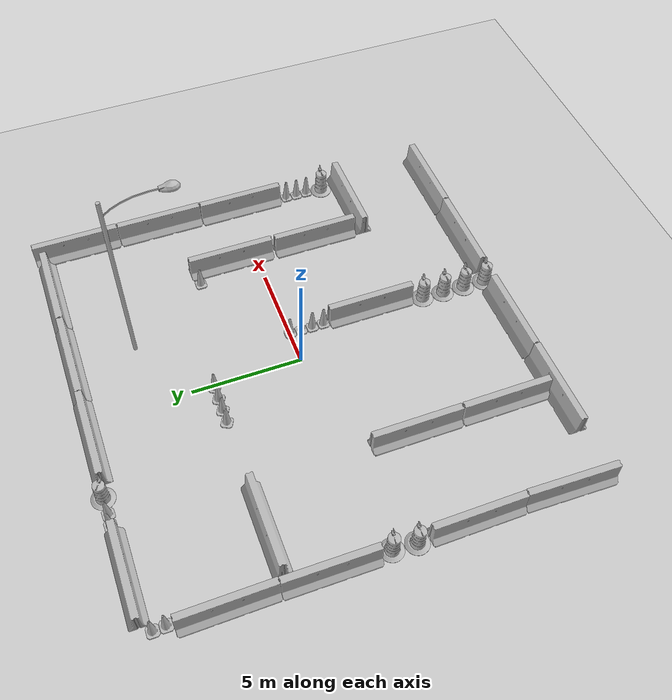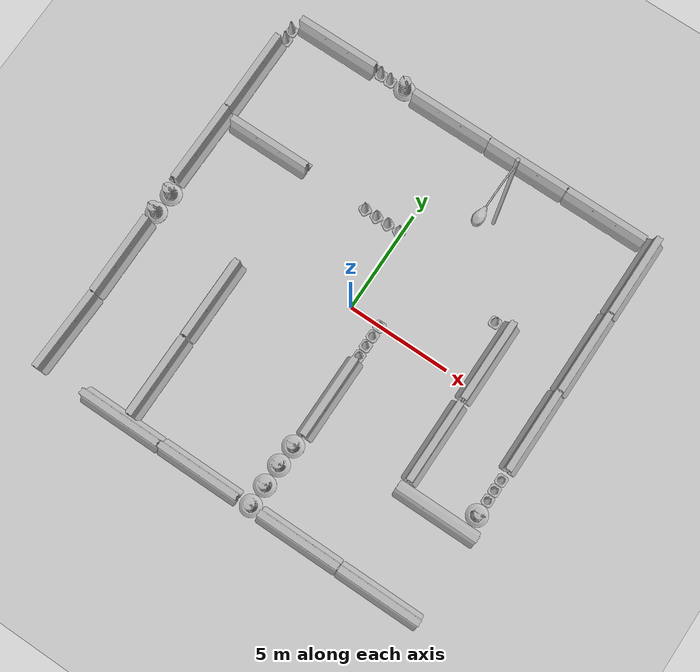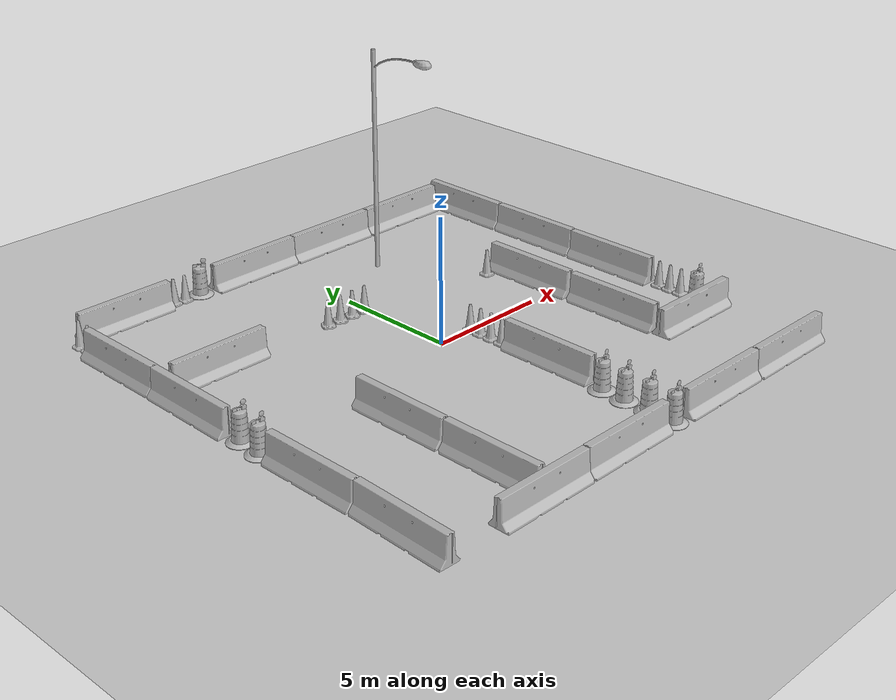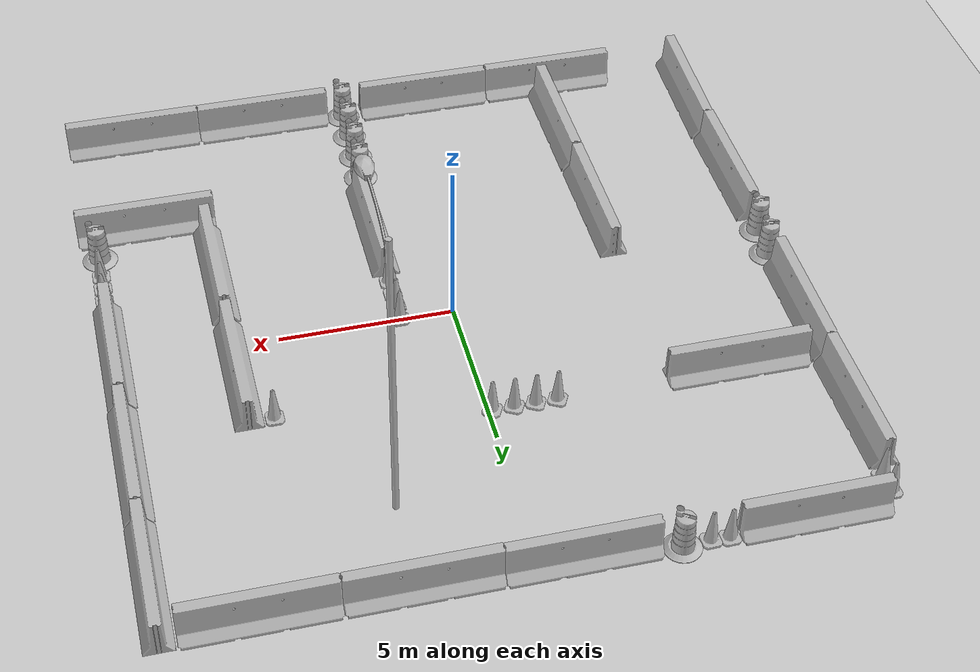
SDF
<sdf version="1.6">
 <world name="default">
  <light name="sun" type="directional">
   <pose>0 0 10 0 -0 0</pose>
   <diffuse>0.8 0.8 0.8 1</diffuse>
   <specular>0.2 0.2 0.2 1</specular>
   <attenuation>
    <range>1000</range>
    <constant>0.9</constant>
    <linear>0.01</linear>
    <quadratic>0.001</quadratic>
   </attenuation>
   <direction>-0.5 0.1 -0.9</direction>
  </light>
  <model name="ground_plane">
   <static>1</static>
   <link name="link">
    <collision name="collision">
     <geometry><plane><normal>0 0 1</normal><size>100 100</size></plane></geometry>
     <surface>
      <contact><collide_bitmask>65535</collide_bitmask></contact>
      <friction><ode><mu>100</mu><mu2>50</mu2></ode></friction>
     </surface>
    </collision>
    <visual name="visual">
     <cast_shadows>0</cast_shadows>
     <geometry><plane><normal>0 0 1</normal><size>100 100</size></plane></geometry>
     <material>
      <script><uri>file://media/materials/scripts/gazebo.material</uri><name>Gazebo/Grey</name></script>
     </material>
    </visual>
   </link>
  </model>
  <gravity>0 0 -9.8</gravity>
  <magnetic_field>6e-06 2.3e-05 -4.2e-05</magnetic_field>
  <atmosphere type="adiabatic"/>
  <physics name="default_physics" default="0" type="ode">
   <max_step_size>0.001</max_step_size>
   <real_time_factor>1</real_time_factor>
   <real_time_update_rate>1000</real_time_update_rate>
  </physics>
  <scene><ambient>0.4 0.4 0.4 1</ambient><background>0.7 0.7 0.7 1</background><shadows>1</shadows></scene>
  <spherical_coordinates>
   <surface_model>EARTH_WGS84</surface_model>
   <latitude_deg>0</latitude_deg>
   <longitude_deg>0</longitude_deg>
   <elevation>0</elevation>
   <heading_deg>0</heading_deg>
  </spherical_coordinates>
  <model name="jersey_barrier">
   <static>1</static>
   <link name="link">
    <visual name="visual">
     <geometry><mesh><uri>model://jersey_barrier/meshes/jersey_barrier.dae</uri></mesh></geometry>
    </visual>
    <collision name="upright">
     <pose>0 0 0.5715 0 -0 0</pose>
     <geometry><box><size>4.06542 0.3063 1.143</size></box></geometry>
    </collision>
    <collision name="base">
     <pose>0 0 0.032258 0 -0 0</pose>
     <geometry><box><size>4.06542 0.8107 0.064516</size></box></geometry>
    </collision>
    <collision name="base2">
     <pose>0 0 0.1 0 -0 0</pose>
     <geometry><box><size>4.06542 0.65 0.1</size></box></geometry>
    </collision>
    <collision name="base3">
     <pose>0 0 0.2 0 -0 0</pose>
     <geometry><box><size>4.06542 0.5 0.1</size></box></geometry>
    </collision>
    <collision name="left-angle">
     <pose>0 -0.224 0.2401 0.9 -0 0</pose>
     <geometry><box><size>4.06542 0.5 0.064516</size></box></geometry>
    </collision>
    <collision name="right-angle">
     <pose>0 0.224 0.2401 -0.9 0 0</pose>
     <geometry><box><size>4.06542 0.5 0.064516</size></box></geometry>
    </collision>
   </link>
   <pose>7.91587 -9.63648 0 0 -0 0</pose>
  </model>
  <model name="jersey_barrier_0">
   <static>1</static>
   <link name="link">
    <visual name="visual">
     <geometry><mesh><uri>model://jersey_barrier/meshes/jersey_barrier.dae</uri></mesh></geometry>
    </visual>
    <collision name="upright">
     <pose>0 0 0.5715 0 -0 0</pose>
     <geometry><box><size>4.06542 0.3063 1.143</size></box></geometry>
    </collision>
    <collision name="base">
     <pose>0 0 0.032258 0 -0 0</pose>
     <geometry><box><size>4.06542 0.8107 0.064516</size></box></geometry>
    </collision>
    <collision name="base2">
     <pose>0 0 0.1 0 -0 0</pose>
     <geometry><box><size>4.06542 0.65 0.1</size></box></geometry>
    </collision>
    <collision name="base3">
     <pose>0 0 0.2 0 -0 0</pose>
     <geometry><box><size>4.06542 0.5 0.1</size></box></geometry>
    </collision>
    <collision name="left-angle">
     <pose>0 -0.224 0.2401 0.9 -0 0</pose>
     <geometry><box><size>4.06542 0.5 0.064516</size></box></geometry>
    </collision>
    <collision name="right-angle">
     <pose>0 0.224 0.2401 -0.9 0 0</pose>
     <geometry><box><size>4.06542 0.5 0.064516</size></box></geometry>
    </collision>
   </link>
   <pose>3.84154 -9.62151 0 0 -0 0</pose>
  </model>
  <model name="Construction Barrel">
   <link name="link">
    <inertial>
     <pose>0 0 0.4 0 -0 0</pose>
     <mass>500</mass>
     <inertia><ixx>51.2096</ixx><iyy>51.2096</iyy><izz>25</izz><ixy>0</ixy><ixz>0</ixz><iyz>0</iyz></inertia>
    </inertial>
    <collision name="collision">
     <geometry><mesh><uri>model://construction_barrel/meshes/construction_barrel.dae</uri></mesh></geometry>
    </collision>
    <visual name="visual">
     <geometry><mesh><uri>model://construction_barrel/meshes/construction_barrel.dae</uri></mesh></geometry>
    </visual>
   </link>
   <pose>1.29848 -9.56165 -1e-06 3e-06 -2e-06 -0.00014</pose>
  </model>
  <model name="Construction Barrel_0">
   <link name="link">
    <inertial>
     <pose>0 0 0.4 0 -0 0</pose>
     <mass>500</mass>
     <inertia><ixx>51.2096</ixx><iyy>51.2096</iyy><izz>25</izz><ixy>0</ixy><ixz>0</ixz><iyz>0</iyz></inertia>
    </inertial>
    <collision name="collision">
     <geometry><mesh><uri>model://construction_barrel/meshes/construction_barrel.dae</uri></mesh></geometry>
    </collision>
    <visual name="visual">
     <geometry><mesh><uri>model://construction_barrel/meshes/construction_barrel.dae</uri></mesh></geometry>
    </visual>
   </link>
   <pose>1.30655 -8.51712 -1e-06 3e-06 -2e-06 -0.000161</pose>
  </model>
  <model name="Construction Barrel_1">
   <link name="link">
    <inertial>
     <pose>0 0 0.4 0 -0 0</pose>
     <mass>500</mass>
     <inertia><ixx>51.2096</ixx><iyy>51.2096</iyy><izz>25</izz><ixy>0</ixy><ixz>0</ixz><iyz>0</iyz></inertia>
    </inertial>
    <collision name="collision">
     <geometry><mesh><uri>model://construction_barrel/meshes/construction_barrel.dae</uri></mesh></geometry>
    </collision>
    <visual name="visual">
     <geometry><mesh><uri>model://construction_barrel/meshes/construction_barrel.dae</uri></mesh></geometry>
    </visual>
   </link>
   <pose>1.31397 -7.47198 -1e-06 3e-06 -2e-06 -0.00016</pose>
  </model>
  <model name="Construction Barrel_2">
   <link name="link">
    <inertial>
     <pose>0 0 0.4 0 -0 0</pose>
     <mass>500</mass>
     <inertia><ixx>51.2096</ixx><iyy>51.2096</iyy><izz>25</izz><ixy>0</ixy><ixz>0</ixz><iyz>0</iyz></inertia>
    </inertial>
    <collision name="collision">
     <geometry><mesh><uri>model://construction_barrel/meshes/construction_barrel.dae</uri></mesh></geometry>
    </collision>
    <visual name="visual">
     <geometry><mesh><uri>model://construction_barrel/meshes/construction_barrel.dae</uri></mesh></geometry>
    </visual>
   </link>
   <pose>1.35829 -6.45747 -1e-06 3e-06 -2e-06 -0.000159</pose>
  </model>
  <model name="jersey_barrier_1">
   <static>1</static>
   <link name="link">
    <visual name="visual">
     <geometry><mesh><uri>model://jersey_barrier/meshes/jersey_barrier.dae</uri></mesh></geometry>
    </visual>
    <collision name="upright">
     <pose>0 0 0.5715 0 -0 0</pose>
     <geometry><box><size>4.06542 0.3063 1.143</size></box></geometry>
    </collision>
    <collision name="base">
     <pose>0 0 0.032258 0 -0 0</pose>
     <geometry><box><size>4.06542 0.8107 0.064516</size></box></geometry>
    </collision>
    <collision name="base2">
     <pose>0 0 0.1 0 -0 0</pose>
     <geometry><box><size>4.06542 0.65 0.1</size></box></geometry>
    </collision>
    <collision name="base3">
     <pose>0 0 0.2 0 -0 0</pose>
     <geometry><box><size>4.06542 0.5 0.1</size></box></geometry>
    </collision>
    <collision name="left-angle">
     <pose>0 -0.224 0.2401 0.9 -0 0</pose>
     <geometry><box><size>4.06542 0.5 0.064516</size></box></geometry>
    </collision>
    <collision name="right-angle">
     <pose>0 0.224 0.2401 -0.9 0 0</pose>
     <geometry><box><size>4.06542 0.5 0.064516</size></box></geometry>
    </collision>
   </link>
   <pose>8.0434 -5.4376 0 0 -0 0</pose>
  </model>
  <model name="jersey_barrier_2">
   <static>1</static>
   <link name="link">
    <visual name="visual">
     <geometry><mesh><uri>model://jersey_barrier/meshes/jersey_barrier.dae</uri></mesh></geometry>
    </visual>
    <collision name="upright">
     <pose>0 0 0.5715 0 -0 0</pose>
     <geometry><box><size>4.06542 0.3063 1.143</size></box></geometry>
    </collision>
    <collision name="base">
     <pose>0 0 0.032258 0 -0 0</pose>
     <geometry><box><size>4.06542 0.8107 0.064516</size></box></geometry>
    </collision>
    <collision name="base2">
     <pose>0 0 0.1 0 -0 0</pose>
     <geometry><box><size>4.06542 0.65 0.1</size></box></geometry>
    </collision>
    <collision name="base3">
     <pose>0 0 0.2 0 -0 0</pose>
     <geometry><box><size>4.06542 0.5 0.1</size></box></geometry>
    </collision>
    <collision name="left-angle">
     <pose>0 -0.224 0.2401 0.9 -0 0</pose>
     <geometry><box><size>4.06542 0.5 0.064516</size></box></geometry>
    </collision>
    <collision name="right-angle">
     <pose>0 0.224 0.2401 -0.9 0 0</pose>
     <geometry><box><size>4.06542 0.5 0.064516</size></box></geometry>
    </collision>
   </link>
   <pose>-1.30441 -9.61113 0 0 -0 0</pose>
  </model>
  <model name="jersey_barrier_3">
   <static>1</static>
   <link name="link">
    <visual name="visual">
     <geometry><mesh><uri>model://jersey_barrier/meshes/jersey_barrier.dae</uri></mesh></geometry>
    </visual>
    <collision name="upright">
     <pose>0 0 0.5715 0 -0 0</pose>
     <geometry><box><size>4.06542 0.3063 1.143</size></box></geometry>
    </collision>
    <collision name="base">
     <pose>0 0 0.032258 0 -0 0</pose>
     <geometry><box><size>4.06542 0.8107 0.064516</size></box></geometry>
    </collision>
    <collision name="base2">
     <pose>0 0 0.1 0 -0 0</pose>
     <geometry><box><size>4.06542 0.65 0.1</size></box></geometry>
    </collision>
    <collision name="base3">
     <pose>0 0 0.2 0 -0 0</pose>
     <geometry><box><size>4.06542 0.5 0.1</size></box></geometry>
    </collision>
    <collision name="left-angle">
     <pose>0 -0.224 0.2401 0.9 -0 0</pose>
     <geometry><box><size>4.06542 0.5 0.064516</size></box></geometry>
    </collision>
    <collision name="right-angle">
     <pose>0 0.224 0.2401 -0.9 0 0</pose>
     <geometry><box><size>4.06542 0.5 0.064516</size></box></geometry>
    </collision>
   </link>
   <pose>-5.38329 -9.62572 0 0 -0 0</pose>
  </model>
  <model name="jersey_barrier_4">
   <static>1</static>
   <link name="link">
    <visual name="visual">
     <geometry><mesh><uri>model://jersey_barrier/meshes/jersey_barrier.dae</uri></mesh></geometry>
    </visual>
    <collision name="upright">
     <pose>0 0 0.5715 0 -0 0</pose>
     <geometry><box><size>4.06542 0.3063 1.143</size></box></geometry>
    </collision>
    <collision name="base">
     <pose>0 0 0.032258 0 -0 0</pose>
     <geometry><box><size>4.06542 0.8107 0.064516</size></box></geometry>
    </collision>
    <collision name="base2">
     <pose>0 0 0.1 0 -0 0</pose>
     <geometry><box><size>4.06542 0.65 0.1</size></box></geometry>
    </collision>
    <collision name="base3">
     <pose>0 0 0.2 0 -0 0</pose>
     <geometry><box><size>4.06542 0.5 0.1</size></box></geometry>
    </collision>
    <collision name="left-angle">
     <pose>0 -0.224 0.2401 0.9 -0 0</pose>
     <geometry><box><size>4.06542 0.5 0.064516</size></box></geometry>
    </collision>
    <collision name="right-angle">
     <pose>0 0.224 0.2401 -0.9 0 0</pose>
     <geometry><box><size>4.06542 0.5 0.064516</size></box></geometry>
    </collision>
   </link>
   <pose>-9.61513 2.30223 0 0 -0 1.56363</pose>
  </model>
  <model name="jersey_barrier_5">
   <static>1</static>
   <link name="link">
    <visual name="visual">
     <geometry><mesh><uri>model://jersey_barrier/meshes/jersey_barrier.dae</uri></mesh></geometry>
    </visual>
    <collision name="upright">
     <pose>0 0 0.5715 0 -0 0</pose>
     <geometry><box><size>4.06542 0.3063 1.143</size></box></geometry>
    </collision>
    <collision name="base">
     <pose>0 0 0.032258 0 -0 0</pose>
     <geometry><box><size>4.06542 0.8107 0.064516</size></box></geometry>
    </collision>
    <collision name="base2">
     <pose>0 0 0.1 0 -0 0</pose>
     <geometry><box><size>4.06542 0.65 0.1</size></box></geometry>
    </collision>
    <collision name="base3">
     <pose>0 0 0.2 0 -0 0</pose>
     <geometry><box><size>4.06542 0.5 0.1</size></box></geometry>
    </collision>
    <collision name="left-angle">
     <pose>0 -0.224 0.2401 0.9 -0 0</pose>
     <geometry><box><size>4.06542 0.5 0.064516</size></box></geometry>
    </collision>
    <collision name="right-angle">
     <pose>0 0.224 0.2401 -0.9 0 0</pose>
     <geometry><box><size>4.06542 0.5 0.064516</size></box></geometry>
    </collision>
   </link>
   <pose>-9.59172 6.3674 0 0 0 -1.56631</pose>
  </model>
  <model name="jersey_barrier_6">
   <static>1</static>
   <link name="link">
    <visual name="visual">
     <geometry><mesh><uri>model://jersey_barrier/meshes/jersey_barrier.dae</uri></mesh></geometry>
    </visual>
    <collision name="upright">
     <pose>0 0 0.5715 0 -0 0</pose>
     <geometry><box><size>4.06542 0.3063 1.143</size></box></geometry>
    </collision>
    <collision name="base">
     <pose>0 0 0.032258 0 -0 0</pose>
     <geometry><box><size>4.06542 0.8107 0.064516</size></box></geometry>
    </collision>
    <collision name="base2">
     <pose>0 0 0.1 0 -0 0</pose>
     <geometry><box><size>4.06542 0.65 0.1</size></box></geometry>
    </collision>
    <collision name="base3">
     <pose>0 0 0.2 0 -0 0</pose>
     <geometry><box><size>4.06542 0.5 0.1</size></box></geometry>
    </collision>
    <collision name="left-angle">
     <pose>0 -0.224 0.2401 0.9 -0 0</pose>
     <geometry><box><size>4.06542 0.5 0.064516</size></box></geometry>
    </collision>
    <collision name="right-angle">
     <pose>0 0.224 0.2401 -0.9 0 0</pose>
     <geometry><box><size>4.06542 0.5 0.064516</size></box></geometry>
    </collision>
   </link>
   <pose>1.52517 -3.89392 0 0 -0 1.57262</pose>
  </model>
  <model name="jersey_barrier_7">
   <static>1</static>
   <link name="link">
    <visual name="visual">
     <geometry><mesh><uri>model://jersey_barrier/meshes/jersey_barrier.dae</uri></mesh></geometry>
    </visual>
    <collision name="upright">
     <pose>0 0 0.5715 0 -0 0</pose>
     <geometry><box><size>4.06542 0.3063 1.143</size></box></geometry>
    </collision>
    <collision name="base">
     <pose>0 0 0.032258 0 -0 0</pose>
     <geometry><box><size>4.06542 0.8107 0.064516</size></box></geometry>
    </collision>
    <collision name="base2">
     <pose>0 0 0.1 0 -0 0</pose>
     <geometry><box><size>4.06542 0.65 0.1</size></box></geometry>
    </collision>
    <collision name="base3">
     <pose>0 0 0.2 0 -0 0</pose>
     <geometry><box><size>4.06542 0.5 0.1</size></box></geometry>
    </collision>
    <collision name="left-angle">
     <pose>0 -0.224 0.2401 0.9 -0 0</pose>
     <geometry><box><size>4.06542 0.5 0.064516</size></box></geometry>
    </collision>
    <collision name="right-angle">
     <pose>0 0.224 0.2401 -0.9 0 0</pose>
     <geometry><box><size>4.06542 0.5 0.064516</size></box></geometry>
    </collision>
   </link>
   <pose>-9.60679 -7.89454 0 0 0 -1.59777</pose>
  </model>
  <model name="jersey_barrier_5_clone">
   <static>1</static>
   <link name="link">
    <visual name="visual">
     <geometry><mesh><uri>model://jersey_barrier/meshes/jersey_barrier.dae</uri></mesh></geometry>
    </visual>
    <collision name="upright">
     <pose>0 0 0.5715 0 -0 0</pose>
     <geometry><box><size>4.06542 0.3063 1.143</size></box></geometry>
    </collision>
    <collision name="base">
     <pose>0 0 0.032258 0 -0 0</pose>
     <geometry><box><size>4.06542 0.8107 0.064516</size></box></geometry>
    </collision>
    <collision name="base2">
     <pose>0 0 0.1 0 -0 0</pose>
     <geometry><box><size>4.06542 0.65 0.1</size></box></geometry>
    </collision>
    <collision name="base3">
     <pose>0 0 0.2 0 -0 0</pose>
     <geometry><box><size>4.06542 0.5 0.1</size></box></geometry>
    </collision>
    <collision name="left-angle">
     <pose>0 -0.224 0.2401 0.9 -0 0</pose>
     <geometry><box><size>4.06542 0.5 0.064516</size></box></geometry>
    </collision>
    <collision name="right-angle">
     <pose>0 0.224 0.2401 -0.9 0 0</pose>
     <geometry><box><size>4.06542 0.5 0.064516</size></box></geometry>
    </collision>
   </link>
   <pose>-9.58457 -3.82633 0 0 0 -1.56631</pose>
  </model>
  <model name="Construction Barrel_2_clone">
   <link name="link">
    <inertial>
     <pose>0 0 0.4 0 -0 0</pose>
     <mass>500</mass>
     <inertia><ixx>51.2096</ixx><iyy>51.2096</iyy><izz>25</izz><ixy>0</ixy><ixz>0</ixz><iyz>0</iyz></inertia>
    </inertial>
    <collision name="collision">
     <geometry><mesh><uri>model://construction_barrel/meshes/construction_barrel.dae</uri></mesh></geometry>
    </collision>
    <visual name="visual">
     <geometry><mesh><uri>model://construction_barrel/meshes/construction_barrel.dae</uri></mesh></geometry>
    </visual>
   </link>
   <pose>-9.60329 -1.28381 -0 -0 -0 -0.012343</pose>
  </model>
  <model name="Construction Barrel_2_clone_clone">
   <link name="link">
    <inertial>
     <pose>0 0 0.4 0 -0 0</pose>
     <mass>500</mass>
     <inertia><ixx>51.2096</ixx><iyy>51.2096</iyy><izz>25</izz><ixy>0</ixy><ixz>0</ixz><iyz>0</iyz></inertia>
    </inertial>
    <collision name="collision">
     <geometry><mesh><uri>model://construction_barrel/meshes/construction_barrel.dae</uri></mesh></geometry>
    </collision>
    <visual name="visual">
     <geometry><mesh><uri>model://construction_barrel/meshes/construction_barrel.dae</uri></mesh></geometry>
    </visual>
   </link>
   <pose>-9.53107 -0.241431 -0 0 -0 -0.139075</pose>
  </model>
  <model name="Construction Barrel_2_clone_clone_0">
   <link name="link">
    <inertial>
     <pose>0 0 0.4 0 -0 0</pose>
     <mass>500</mass>
     <inertia><ixx>51.2096</ixx><iyy>51.2096</iyy><izz>25</izz><ixy>0</ixy><ixz>0</ixz><iyz>0</iyz></inertia>
    </inertial>
    <collision name="collision">
     <geometry><mesh><uri>model://construction_barrel/meshes/construction_barrel.dae</uri></mesh></geometry>
    </collision>
    <visual name="visual">
     <geometry><mesh><uri>model://construction_barrel/meshes/construction_barrel.dae</uri></mesh></geometry>
    </visual>
   </link>
   <pose>9.52438 -4.50123 -1e-06 -8e-06 -2e-06 -0.014891</pose>
  </model>
  <model name="Construction Cone">
   <link name="link">
    <collision name="collision">
     <geometry>
      <mesh><scale>10 10 10</scale><uri>model://construction_cone/meshes/construction_cone.dae</uri></mesh>
     </geometry>
    </collision>
    <visual name="visual">
     <geometry>
      <mesh><scale>10 10 10</scale><uri>model://construction_cone/meshes/construction_cone.dae</uri></mesh>
     </geometry>
    </visual>
    <inertial>
     <inertia><ixx>1</ixx><ixy>0</ixy><ixz>0</ixz><iyy>1</iyy><iyz>0</iyz><izz>1</izz></inertia>
     <mass>1</mass>
    </inertial>
   </link>
   <pose>-9.41719 8.66762 0 -0 -0 -0</pose>
  </model>
  <model name="Construction Cone_clone">
   <link name="link">
    <collision name="collision">
     <geometry>
      <mesh><scale>10 10 10</scale><uri>model://construction_cone/meshes/construction_cone.dae</uri></mesh>
     </geometry>
    </collision>
    <visual name="visual">
     <geometry>
      <mesh><scale>10 10 10</scale><uri>model://construction_cone/meshes/construction_cone.dae</uri></mesh>
     </geometry>
    </visual>
    <inertial>
     <inertia><ixx>1</ixx><ixy>0</ixy><ixz>0</ixz><iyy>1</iyy><iyz>0</iyz><izz>1</izz></inertia>
     <mass>1</mass>
    </inertial>
   </link>
   <pose>-9.44556 9.19158 0 -0 -0 -0.000675</pose>
  </model>
  <model name="Construction Cone_clone_0">
   <link name="link">
    <collision name="collision">
     <geometry>
      <mesh><scale>10 10 10</scale><uri>model://construction_cone/meshes/construction_cone.dae</uri></mesh>
     </geometry>
    </collision>
    <visual name="visual">
     <geometry>
      <mesh><scale>10 10 10</scale><uri>model://construction_cone/meshes/construction_cone.dae</uri></mesh>
     </geometry>
    </visual>
    <inertial>
     <inertia><ixx>1</ixx><ixy>0</ixy><ixz>0</ixz><iyy>1</iyy><iyz>0</iyz><izz>1</izz></inertia>
     <mass>1</mass>
    </inertial>
   </link>
   <pose>-0.129965 4.01542 -0 0 0 -0.494017</pose>
  </model>
  <model name="Construction Cone_0">
   <link name="link">
    <collision name="collision">
     <geometry>
      <mesh><scale>10 10 10</scale><uri>model://construction_cone/meshes/construction_cone.dae</uri></mesh>
     </geometry>
    </collision>
    <visual name="visual">
     <geometry>
      <mesh><scale>10 10 10</scale><uri>model://construction_cone/meshes/construction_cone.dae</uri></mesh>
     </geometry>
    </visual>
    <inertial>
     <inertia><ixx>1</ixx><ixy>0</ixy><ixz>0</ixz><iyy>1</iyy><iyz>0</iyz><izz>1</izz></inertia>
     <mass>1</mass>
    </inertial>
   </link>
   <pose>1.52244 -1.60885 -2e-06 -3e-06 -1e-06 -0.002374</pose>
  </model>
  <model name="Construction Cone_1">
   <link name="link">
    <collision name="collision">
     <geometry>
      <mesh><scale>10 10 10</scale><uri>model://construction_cone/meshes/construction_cone.dae</uri></mesh>
     </geometry>
    </collision>
    <visual name="visual">
     <geometry>
      <mesh><scale>10 10 10</scale><uri>model://construction_cone/meshes/construction_cone.dae</uri></mesh>
     </geometry>
    </visual>
    <inertial>
     <inertia><ixx>1</ixx><ixy>0</ixy><ixz>0</ixz><iyy>1</iyy><iyz>0</iyz><izz>1</izz></inertia>
     <mass>1</mass>
    </inertial>
   </link>
   <pose>1.51344 -1.07222 -0 0 -0 0</pose>
  </model>
  <model name="Construction Cone_2">
   <link name="link">
    <collision name="collision">
     <geometry>
      <mesh><scale>10 10 10</scale><uri>model://construction_cone/meshes/construction_cone.dae</uri></mesh>
     </geometry>
    </collision>
    <visual name="visual">
     <geometry>
      <mesh><scale>10 10 10</scale><uri>model://construction_cone/meshes/construction_cone.dae</uri></mesh>
     </geometry>
    </visual>
    <inertial>
     <inertia><ixx>1</ixx><ixy>0</ixy><ixz>0</ixz><iyy>1</iyy><iyz>0</iyz><izz>1</izz></inertia>
     <mass>1</mass>
    </inertial>
   </link>
   <pose>1.51846 -0.542329 -0 0 -1e-06 0</pose>
  </model>
  <model name="Construction Cone_3">
   <link name="link">
    <collision name="collision">
     <geometry>
      <mesh><scale>10 10 10</scale><uri>model://construction_cone/meshes/construction_cone.dae</uri></mesh>
     </geometry>
    </collision>
    <visual name="visual">
     <geometry>
      <mesh><scale>10 10 10</scale><uri>model://construction_cone/meshes/construction_cone.dae</uri></mesh>
     </geometry>
    </visual>
    <inertial>
     <inertia><ixx>1</ixx><ixy>0</ixy><ixz>0</ixz><iyy>1</iyy><iyz>0</iyz><izz>1</izz></inertia>
     <mass>1</mass>
    </inertial>
   </link>
   <pose>1.52346 -0.014885 0 -0 -0 -0</pose>
  </model>
  <model name="jersey_barrier_6_clone">
   <static>1</static>
   <link name="link">
    <visual name="visual">
     <geometry><mesh><uri>model://jersey_barrier/meshes/jersey_barrier.dae</uri></mesh></geometry>
    </visual>
    <collision name="upright">
     <pose>0 0 0.5715 0 -0 0</pose>
     <geometry><box><size>4.06542 0.3063 1.143</size></box></geometry>
    </collision>
    <collision name="base">
     <pose>0 0 0.032258 0 -0 0</pose>
     <geometry><box><size>4.06542 0.8107 0.064516</size></box></geometry>
    </collision>
    <collision name="base2">
     <pose>0 0 0.1 0 -0 0</pose>
     <geometry><box><size>4.06542 0.65 0.1</size></box></geometry>
    </collision>
    <collision name="base3">
     <pose>0 0 0.2 0 -0 0</pose>
     <geometry><box><size>4.06542 0.5 0.1</size></box></geometry>
    </collision>
    <collision name="left-angle">
     <pose>0 -0.224 0.2401 0.9 -0 0</pose>
     <geometry><box><size>4.06542 0.5 0.064516</size></box></geometry>
    </collision>
    <collision name="right-angle">
     <pose>0 0.224 0.2401 -0.9 0 0</pose>
     <geometry><box><size>4.06542 0.5 0.064516</size></box></geometry>
    </collision>
   </link>
   <pose>6.32545 -2.97095 0 0 -0 1.57262</pose>
  </model>
  <model name="Construction Cone_3_clone">
   <link name="link">
    <collision name="collision">
     <geometry>
      <mesh><scale>10 10 10</scale><uri>model://construction_cone/meshes/construction_cone.dae</uri></mesh>
     </geometry>
    </collision>
    <visual name="visual">
     <geometry>
      <mesh><scale>10 10 10</scale><uri>model://construction_cone/meshes/construction_cone.dae</uri></mesh>
     </geometry>
    </visual>
    <inertial>
     <inertia><ixx>1</ixx><ixy>0</ixy><ixz>0</ixz><iyy>1</iyy><iyz>0</iyz><izz>1</izz></inertia>
     <mass>1</mass>
    </inertial>
   </link>
   <pose>9.57174 -3.72166 -2e-06 -3e-06 -1e-06 -0</pose>
  </model>
  <model name="Construction Cone_3_clone_0">
   <link name="link">
    <collision name="collision">
     <geometry>
      <mesh><scale>10 10 10</scale><uri>model://construction_cone/meshes/construction_cone.dae</uri></mesh>
     </geometry>
    </collision>
    <visual name="visual">
     <geometry>
      <mesh><scale>10 10 10</scale><uri>model://construction_cone/meshes/construction_cone.dae</uri></mesh>
     </geometry>
    </visual>
    <inertial>
     <inertia><ixx>1</ixx><ixy>0</ixy><ixz>0</ixz><iyy>1</iyy><iyz>0</iyz><izz>1</izz></inertia>
     <mass>1</mass>
    </inertial>
   </link>
   <pose>9.57445 -3.19921 -4e-06 4e-06 -1e-06 0.000482</pose>
  </model>
  <model name="Construction Cone_3_clone_1">
   <link name="link">
    <collision name="collision">
     <geometry>
      <mesh><scale>10 10 10</scale><uri>model://construction_cone/meshes/construction_cone.dae</uri></mesh>
     </geometry>
    </collision>
    <visual name="visual">
     <geometry>
      <mesh><scale>10 10 10</scale><uri>model://construction_cone/meshes/construction_cone.dae</uri></mesh>
     </geometry>
    </visual>
    <inertial>
     <inertia><ixx>1</ixx><ixy>0</ixy><ixz>0</ixz><iyy>1</iyy><iyz>0</iyz><izz>1</izz></inertia>
     <mass>1</mass>
    </inertial>
   </link>
   <pose>9.58721 -2.67226 -6e-06 -4e-06 -0 0.000474</pose>
  </model>
  <model name="jersey_barrier_6_clone_clone">
   <static>1</static>
   <link name="link">
    <visual name="visual">
     <geometry><mesh><uri>model://jersey_barrier/meshes/jersey_barrier.dae</uri></mesh></geometry>
    </visual>
    <collision name="upright">
     <pose>0 0 0.5715 0 -0 0</pose>
     <geometry><box><size>4.06542 0.3063 1.143</size></box></geometry>
    </collision>
    <collision name="base">
     <pose>0 0 0.032258 0 -0 0</pose>
     <geometry><box><size>4.06542 0.8107 0.064516</size></box></geometry>
    </collision>
    <collision name="base2">
     <pose>0 0 0.1 0 -0 0</pose>
     <geometry><box><size>4.06542 0.65 0.1</size></box></geometry>
    </collision>
    <collision name="base3">
     <pose>0 0 0.2 0 -0 0</pose>
     <geometry><box><size>4.06542 0.5 0.1</size></box></geometry>
    </collision>
    <collision name="left-angle">
     <pose>0 -0.224 0.2401 0.9 -0 0</pose>
     <geometry><box><size>4.06542 0.5 0.064516</size></box></geometry>
    </collision>
    <collision name="right-angle">
     <pose>0 0.224 0.2401 -0.9 0 0</pose>
     <geometry><box><size>4.06542 0.5 0.064516</size></box></geometry>
    </collision>
   </link>
   <pose>9.55464 -0.26011 0 0 -0 1.57262</pose>
  </model>
  <model name="jersey_barrier_6_clone_clone_0">
   <static>1</static>
   <link name="link">
    <visual name="visual">
     <geometry><mesh><uri>model://jersey_barrier/meshes/jersey_barrier.dae</uri></mesh></geometry>
    </visual>
    <collision name="upright">
     <pose>0 0 0.5715 0 -0 0</pose>
     <geometry><box><size>4.06542 0.3063 1.143</size></box></geometry>
    </collision>
    <collision name="base">
     <pose>0 0 0.032258 0 -0 0</pose>
     <geometry><box><size>4.06542 0.8107 0.064516</size></box></geometry>
    </collision>
    <collision name="base2">
     <pose>0 0 0.1 0 -0 0</pose>
     <geometry><box><size>4.06542 0.65 0.1</size></box></geometry>
    </collision>
    <collision name="base3">
     <pose>0 0 0.2 0 -0 0</pose>
     <geometry><box><size>4.06542 0.5 0.1</size></box></geometry>
    </collision>
    <collision name="left-angle">
     <pose>0 -0.224 0.2401 0.9 -0 0</pose>
     <geometry><box><size>4.06542 0.5 0.064516</size></box></geometry>
    </collision>
    <collision name="right-angle">
     <pose>0 0.224 0.2401 -0.9 0 0</pose>
     <geometry><box><size>4.06542 0.5 0.064516</size></box></geometry>
    </collision>
   </link>
   <pose>9.57984 3.83727 0 0 -0 1.57262</pose>
  </model>
  <model name="jersey_barrier_6_clone_clone_0_clone">
   <static>1</static>
   <link name="link">
    <visual name="visual">
     <geometry><mesh><uri>model://jersey_barrier/meshes/jersey_barrier.dae</uri></mesh></geometry>
    </visual>
    <collision name="upright">
     <pose>0 0 0.5715 0 -0 0</pose>
     <geometry><box><size>4.06542 0.3063 1.143</size></box></geometry>
    </collision>
    <collision name="base">
     <pose>0 0 0.032258 0 -0 0</pose>
     <geometry><box><size>4.06542 0.8107 0.064516</size></box></geometry>
    </collision>
    <collision name="base2">
     <pose>0 0 0.1 0 -0 0</pose>
     <geometry><box><size>4.06542 0.65 0.1</size></box></geometry>
    </collision>
    <collision name="base3">
     <pose>0 0 0.2 0 -0 0</pose>
     <geometry><box><size>4.06542 0.5 0.1</size></box></geometry>
    </collision>
    <collision name="left-angle">
     <pose>0 -0.224 0.2401 0.9 -0 0</pose>
     <geometry><box><size>4.06542 0.5 0.064516</size></box></geometry>
    </collision>
    <collision name="right-angle">
     <pose>0 0.224 0.2401 -0.9 0 0</pose>
     <geometry><box><size>4.06542 0.5 0.064516</size></box></geometry>
    </collision>
   </link>
   <pose>9.5828 7.92955 0 0 -0 1.57262</pose>
  </model>
  <model name="jersey_barrier_1_clone_clone">
   <static>1</static>
   <link name="link">
    <visual name="visual">
     <geometry><mesh><uri>model://jersey_barrier/meshes/jersey_barrier.dae</uri></mesh></geometry>
    </visual>
    <collision name="upright">
     <pose>0 0 0.5715 0 -0 0</pose>
     <geometry><box><size>4.06542 0.3063 1.143</size></box></geometry>
    </collision>
    <collision name="base">
     <pose>0 0 0.032258 0 -0 0</pose>
     <geometry><box><size>4.06542 0.8107 0.064516</size></box></geometry>
    </collision>
    <collision name="base2">
     <pose>0 0 0.1 0 -0 0</pose>
     <geometry><box><size>4.06542 0.65 0.1</size></box></geometry>
    </collision>
    <collision name="base3">
     <pose>0 0 0.2 0 -0 0</pose>
     <geometry><box><size>4.06542 0.5 0.1</size></box></geometry>
    </collision>
    <collision name="left-angle">
     <pose>0 -0.224 0.2401 0.9 -0 0</pose>
     <geometry><box><size>4.06542 0.5 0.064516</size></box></geometry>
    </collision>
    <collision name="right-angle">
     <pose>0 0.224 0.2401 -0.9 0 0</pose>
     <geometry><box><size>4.06542 0.5 0.064516</size></box></geometry>
    </collision>
   </link>
   <pose>7.09608 9.53701 0 0 -0 0</pose>
  </model>
  <model name="jersey_barrier_1_clone_clone_0">
   <static>1</static>
   <link name="link">
    <visual name="visual">
     <geometry><mesh><uri>model://jersey_barrier/meshes/jersey_barrier.dae</uri></mesh></geometry>
    </visual>
    <collision name="upright">
     <pose>0 0 0.5715 0 -0 0</pose>
     <geometry><box><size>4.06542 0.3063 1.143</size></box></geometry>
    </collision>
    <collision name="base">
     <pose>0 0 0.032258 0 -0 0</pose>
     <geometry><box><size>4.06542 0.8107 0.064516</size></box></geometry>
    </collision>
    <collision name="base2">
     <pose>0 0 0.1 0 -0 0</pose>
     <geometry><box><size>4.06542 0.65 0.1</size></box></geometry>
    </collision>
    <collision name="base3">
     <pose>0 0 0.2 0 -0 0</pose>
     <geometry><box><size>4.06542 0.5 0.1</size></box></geometry>
    </collision>
    <collision name="left-angle">
     <pose>0 -0.224 0.2401 0.9 -0 0</pose>
     <geometry><box><size>4.06542 0.5 0.064516</size></box></geometry>
    </collision>
    <collision name="right-angle">
     <pose>0 0.224 0.2401 -0.9 0 0</pose>
     <geometry><box><size>4.06542 0.5 0.064516</size></box></geometry>
    </collision>
   </link>
   <pose>3.01748 9.53941 0 0 -0 0</pose>
  </model>
  <model name="jersey_barrier_1_clone_clone_1">
   <static>1</static>
   <link name="link">
    <visual name="visual">
     <geometry><mesh><uri>model://jersey_barrier/meshes/jersey_barrier.dae</uri></mesh></geometry>
    </visual>
    <collision name="upright">
     <pose>0 0 0.5715 0 -0 0</pose>
     <geometry><box><size>4.06542 0.3063 1.143</size></box></geometry>
    </collision>
    <collision name="base">
     <pose>0 0 0.032258 0 -0 0</pose>
     <geometry><box><size>4.06542 0.8107 0.064516</size></box></geometry>
    </collision>
    <collision name="base2">
     <pose>0 0 0.1 0 -0 0</pose>
     <geometry><box><size>4.06542 0.65 0.1</size></box></geometry>
    </collision>
    <collision name="base3">
     <pose>0 0 0.2 0 -0 0</pose>
     <geometry><box><size>4.06542 0.5 0.1</size></box></geometry>
    </collision>
    <collision name="left-angle">
     <pose>0 -0.224 0.2401 0.9 -0 0</pose>
     <geometry><box><size>4.06542 0.5 0.064516</size></box></geometry>
    </collision>
    <collision name="right-angle">
     <pose>0 0.224 0.2401 -0.9 0 0</pose>
     <geometry><box><size>4.06542 0.5 0.064516</size></box></geometry>
    </collision>
   </link>
   <pose>-1.03148 9.56302 0 0 -0 0</pose>
  </model>
  <model name="Construction Barrel_2_clone_0">
   <link name="link">
    <inertial>
     <pose>0 0 0.4 0 -0 0</pose>
     <mass>500</mass>
     <inertia><ixx>51.2096</ixx><iyy>51.2096</iyy><izz>25</izz><ixy>0</ixy><ixz>0</ixz><iyz>0</iyz></inertia>
    </inertial>
    <collision name="collision">
     <geometry><mesh><uri>model://construction_barrel/meshes/construction_barrel.dae</uri></mesh></geometry>
    </collision>
    <visual name="visual">
     <geometry><mesh><uri>model://construction_barrel/meshes/construction_barrel.dae</uri></mesh></geometry>
    </visual>
   </link>
   <pose>-3.60797 9.7033 0 0 0 -0.560302</pose>
  </model>
  <model name="Construction Cone_clone_1">
   <link name="link">
    <collision name="collision">
     <geometry>
      <mesh><scale>10 10 10</scale><uri>model://construction_cone/meshes/construction_cone.dae</uri></mesh>
     </geometry>
    </collision>
    <visual name="visual">
     <geometry>
      <mesh><scale>10 10 10</scale><uri>model://construction_cone/meshes/construction_cone.dae</uri></mesh>
     </geometry>
    </visual>
    <inertial>
     <inertia><ixx>1</ixx><ixy>0</ixy><ixz>0</ixz><iyy>1</iyy><iyz>0</iyz><izz>1</izz></inertia>
     <mass>1</mass>
    </inertial>
   </link>
   <pose>-4.36738 9.66725 -9e-06 -4e-06 -0 0.033458</pose>
  </model>
  <model name="Construction Cone_clone_2">
   <link name="link">
    <collision name="collision">
     <geometry>
      <mesh><scale>10 10 10</scale><uri>model://construction_cone/meshes/construction_cone.dae</uri></mesh>
     </geometry>
    </collision>
    <visual name="visual">
     <geometry>
      <mesh><scale>10 10 10</scale><uri>model://construction_cone/meshes/construction_cone.dae</uri></mesh>
     </geometry>
    </visual>
    <inertial>
     <inertia><ixx>1</ixx><ixy>0</ixy><ixz>0</ixz><iyy>1</iyy><iyz>0</iyz><izz>1</izz></inertia>
     <mass>1</mass>
    </inertial>
   </link>
   <pose>-4.8715 9.69311 -0 0 -0 0.033342</pose>
  </model>
  <model name="Construction Cone_clone_3">
   <link name="link">
    <collision name="collision">
     <geometry>
      <mesh><scale>10 10 10</scale><uri>model://construction_cone/meshes/construction_cone.dae</uri></mesh>
     </geometry>
    </collision>
    <visual name="visual">
     <geometry>
      <mesh><scale>10 10 10</scale><uri>model://construction_cone/meshes/construction_cone.dae</uri></mesh>
     </geometry>
    </visual>
    <inertial>
     <inertia><ixx>1</ixx><ixy>0</ixy><ixz>0</ixz><iyy>1</iyy><iyz>0</iyz><izz>1</izz></inertia>
     <mass>1</mass>
    </inertial>
   </link>
   <pose>5.62005 2.9598 -4e-06 4e-06 -1e-06 0</pose>
  </model>
  <model name="jersey_barrier_1_clone_clone_1_clone">
   <static>1</static>
   <link name="link">
    <visual name="visual">
     <geometry><mesh><uri>model://jersey_barrier/meshes/jersey_barrier.dae</uri></mesh></geometry>
    </visual>
    <collision name="upright">
     <pose>0 0 0.5715 0 -0 0</pose>
     <geometry><box><size>4.06542 0.3063 1.143</size></box></geometry>
    </collision>
    <collision name="base">
     <pose>0 0 0.032258 0 -0 0</pose>
     <geometry><box><size>4.06542 0.8107 0.064516</size></box></geometry>
    </collision>
    <collision name="base2">
     <pose>0 0 0.1 0 -0 0</pose>
     <geometry><box><size>4.06542 0.65 0.1</size></box></geometry>
    </collision>
    <collision name="base3">
     <pose>0 0 0.2 0 -0 0</pose>
     <geometry><box><size>4.06542 0.5 0.1</size></box></geometry>
    </collision>
    <collision name="left-angle">
     <pose>0 -0.224 0.2401 0.9 -0 0</pose>
     <geometry><box><size>4.06542 0.5 0.064516</size></box></geometry>
    </collision>
    <collision name="right-angle">
     <pose>0 0.224 0.2401 -0.9 0 0</pose>
     <geometry><box><size>4.06542 0.5 0.064516</size></box></geometry>
    </collision>
   </link>
   <pose>-7.1612 9.61571 0 0 -0 0</pose>
  </model>
  <model name="jersey_barrier_6_clone_clone_1">
   <static>1</static>
   <link name="link">
    <visual name="visual">
     <geometry><mesh><uri>model://jersey_barrier/meshes/jersey_barrier.dae</uri></mesh></geometry>
    </visual>
    <collision name="upright">
     <pose>0 0 0.5715 0 -0 0</pose>
     <geometry><box><size>4.06542 0.3063 1.143</size></box></geometry>
    </collision>
    <collision name="base">
     <pose>0 0 0.032258 0 -0 0</pose>
     <geometry><box><size>4.06542 0.8107 0.064516</size></box></geometry>
    </collision>
    <collision name="base2">
     <pose>0 0 0.1 0 -0 0</pose>
     <geometry><box><size>4.06542 0.65 0.1</size></box></geometry>
    </collision>
    <collision name="base3">
     <pose>0 0 0.2 0 -0 0</pose>
     <geometry><box><size>4.06542 0.5 0.1</size></box></geometry>
    </collision>
    <collision name="left-angle">
     <pose>0 -0.224 0.2401 0.9 -0 0</pose>
     <geometry><box><size>4.06542 0.5 0.064516</size></box></geometry>
    </collision>
    <collision name="right-angle">
     <pose>0 0.224 0.2401 -0.9 0 0</pose>
     <geometry><box><size>4.06542 0.5 0.064516</size></box></geometry>
    </collision>
   </link>
   <pose>6.33186 1.23092 0 0 -0 1.57262</pose>
  </model>
  <model name="Construction Cone_clone_0_clone">
   <link name="link">
    <collision name="collision">
     <geometry>
      <mesh><scale>10 10 10</scale><uri>model://construction_cone/meshes/construction_cone.dae</uri></mesh>
     </geometry>
    </collision>
    <visual name="visual">
     <geometry>
      <mesh><scale>10 10 10</scale><uri>model://construction_cone/meshes/construction_cone.dae</uri></mesh>
     </geometry>
    </visual>
    <inertial>
     <inertia><ixx>1</ixx><ixy>0</ixy><ixz>0</ixz><iyy>1</iyy><iyz>0</iyz><izz>1</izz></inertia>
     <mass>1</mass>
    </inertial>
   </link>
   <pose>-0.742449 4.02588 -0 0 0 -0.494017</pose>
  </model>
  <model name="Construction Cone_clone_0_clone_0">
   <link name="link">
    <collision name="collision">
     <geometry>
      <mesh><scale>10 10 10</scale><uri>model://construction_cone/meshes/construction_cone.dae</uri></mesh>
     </geometry>
    </collision>
    <visual name="visual">
     <geometry>
      <mesh><scale>10 10 10</scale><uri>model://construction_cone/meshes/construction_cone.dae</uri></mesh>
     </geometry>
    </visual>
    <inertial>
     <inertia><ixx>1</ixx><ixy>0</ixy><ixz>0</ixz><iyy>1</iyy><iyz>0</iyz><izz>1</izz></inertia>
     <mass>1</mass>
    </inertial>
   </link>
   <pose>-1.34452 4.02946 -0 0 0 -0.494017</pose>
  </model>
  <model name="Construction Cone_clone_0_clone_1">
   <link name="link">
    <collision name="collision">
     <geometry>
      <mesh><scale>10 10 10</scale><uri>model://construction_cone/meshes/construction_cone.dae</uri></mesh>
     </geometry>
    </collision>
    <visual name="visual">
     <geometry>
      <mesh><scale>10 10 10</scale><uri>model://construction_cone/meshes/construction_cone.dae</uri></mesh>
     </geometry>
    </visual>
    <inertial>
     <inertia><ixx>1</ixx><ixy>0</ixy><ixz>0</ixz><iyy>1</iyy><iyz>0</iyz><izz>1</izz></inertia>
     <mass>1</mass>
    </inertial>
   </link>
   <pose>-1.95397 4.03278 -0 0 0 -0.494017</pose>
  </model>
  <model name="Lamp Post">
   <static>1</static>
   <link name="link">
    <collision name="collision">
     <geometry><mesh><uri>model://lamp_post/meshes/lamp_post.dae</uri><scale>3 3 3</scale></mesh></geometry>
    </collision>
    <visual name="visual">
     <geometry><mesh><uri>model://lamp_post/meshes/lamp_post.dae</uri><scale>3 3 3</scale></mesh></geometry>
    </visual>
   </link>
   <pose>3.11251 6.71661 0 0 -0 0</pose>
  </model>
  <model name="jersey_barrier_6_clone_clone_2">
   <static>1</static>
   <link name="link">
    <visual name="visual">
     <geometry><mesh><uri>model://jersey_barrier/meshes/jersey_barrier.dae</uri></mesh></geometry>
    </visual>
    <collision name="upright">
     <pose>0 0 0.5715 0 -0 0</pose>
     <geometry><box><size>4.06542 0.3063 1.143</size></box></geometry>
    </collision>
    <collision name="base">
     <pose>0 0 0.032258 0 -0 0</pose>
     <geometry><box><size>4.06542 0.8107 0.064516</size></box></geometry>
    </collision>
    <collision name="base2">
     <pose>0 0 0.1 0 -0 0</pose>
     <geometry><box><size>4.06542 0.65 0.1</size></box></geometry>
    </collision>
    <collision name="base3">
     <pose>0 0 0.2 0 -0 0</pose>
     <geometry><box><size>4.06542 0.5 0.1</size></box></geometry>
    </collision>
    <collision name="left-angle">
     <pose>0 -0.224 0.2401 0.9 -0 0</pose>
     <geometry><box><size>4.06542 0.5 0.064516</size></box></geometry>
    </collision>
    <collision name="right-angle">
     <pose>0 0.224 0.2401 -0.9 0 0</pose>
     <geometry><box><size>4.06542 0.5 0.064516</size></box></geometry>
    </collision>
   </link>
   <pose>-5.13286 -7.30411 0 0 -0 1.57262</pose>
  </model>
  <model name="jersey_barrier_6_clone_clone_3">
   <static>1</static>
   <link name="link">
    <visual name="visual">
     <geometry><mesh><uri>model://jersey_barrier/meshes/jersey_barrier.dae</uri></mesh></geometry>
    </visual>
    <collision name="upright">
     <pose>0 0 0.5715 0 -0 0</pose>
     <geometry><box><size>4.06542 0.3063 1.143</size></box></geometry>
    </collision>
    <collision name="base">
     <pose>0 0 0.032258 0 -0 0</pose>
     <geometry><box><size>4.06542 0.8107 0.064516</size></box></geometry>
    </collision>
    <collision name="base2">
     <pose>0 0 0.1 0 -0 0</pose>
     <geometry><box><size>4.06542 0.65 0.1</size></box></geometry>
    </collision>
    <collision name="base3">
     <pose>0 0 0.2 0 -0 0</pose>
     <geometry><box><size>4.06542 0.5 0.1</size></box></geometry>
    </collision>
    <collision name="left-angle">
     <pose>0 -0.224 0.2401 0.9 -0 0</pose>
     <geometry><box><size>4.06542 0.5 0.064516</size></box></geometry>
    </collision>
    <collision name="right-angle">
     <pose>0 0.224 0.2401 -0.9 0 0</pose>
     <geometry><box><size>4.06542 0.5 0.064516</size></box></geometry>
    </collision>
   </link>
   <pose>-5.14576 -3.19726 0 0 -0 1.57262</pose>
  </model>
  <model name="jersey_barrier_2_clone">
   <static>1</static>
   <link name="link">
    <visual name="visual">
     <geometry><mesh><uri>model://jersey_barrier/meshes/jersey_barrier.dae</uri></mesh></geometry>
    </visual>
    <collision name="upright">
     <pose>0 0 0.5715 0 -0 0</pose>
     <geometry><box><size>4.06542 0.3063 1.143</size></box></geometry>
    </collision>
    <collision name="base">
     <pose>0 0 0.032258 0 -0 0</pose>
     <geometry><box><size>4.06542 0.8107 0.064516</size></box></geometry>
    </collision>
    <collision name="base2">
     <pose>0 0 0.1 0 -0 0</pose>
     <geometry><box><size>4.06542 0.65 0.1</size></box></geometry>
    </collision>
    <collision name="base3">
     <pose>0 0 0.2 0 -0 0</pose>
     <geometry><box><size>4.06542 0.5 0.1</size></box></geometry>
    </collision>
    <collision name="left-angle">
     <pose>0 -0.224 0.2401 0.9 -0 0</pose>
     <geometry><box><size>4.06542 0.5 0.064516</size></box></geometry>
    </collision>
    <collision name="right-angle">
     <pose>0 0.224 0.2401 -0.9 0 0</pose>
     <geometry><box><size>4.06542 0.5 0.064516</size></box></geometry>
    </collision>
   </link>
   <pose>-7.07649 4.02664 0 0 -0 0</pose>
  </model>
 </world>
</sdf>
